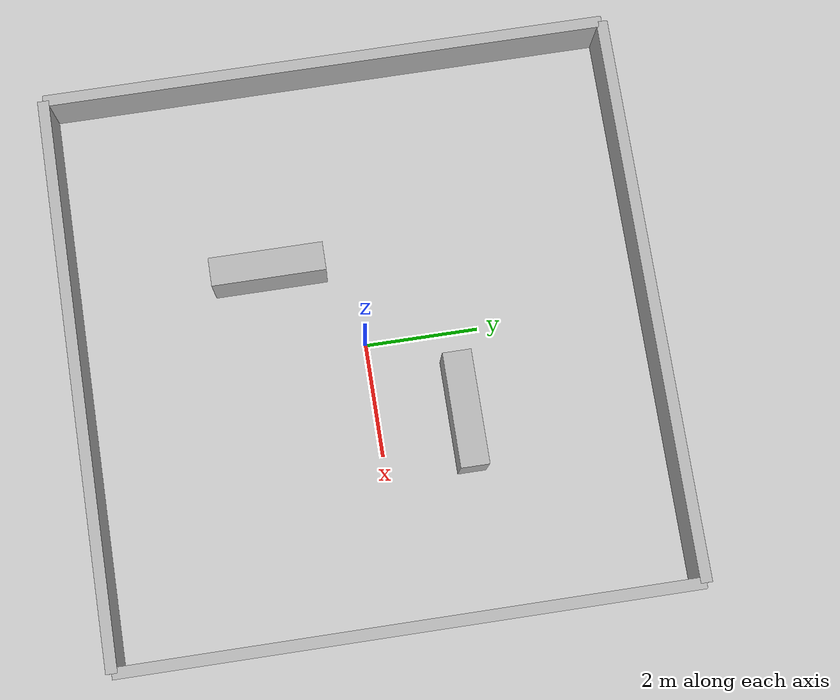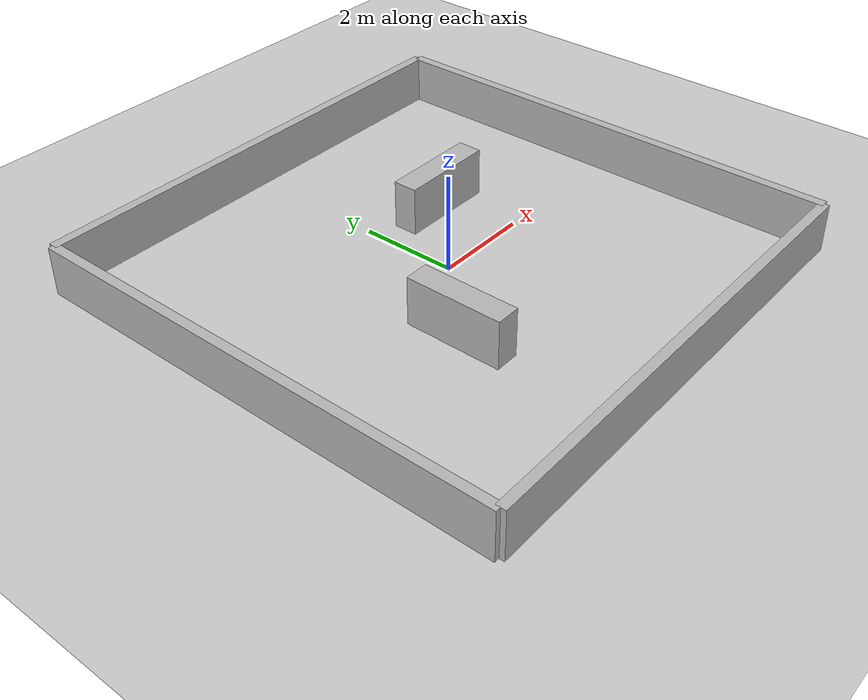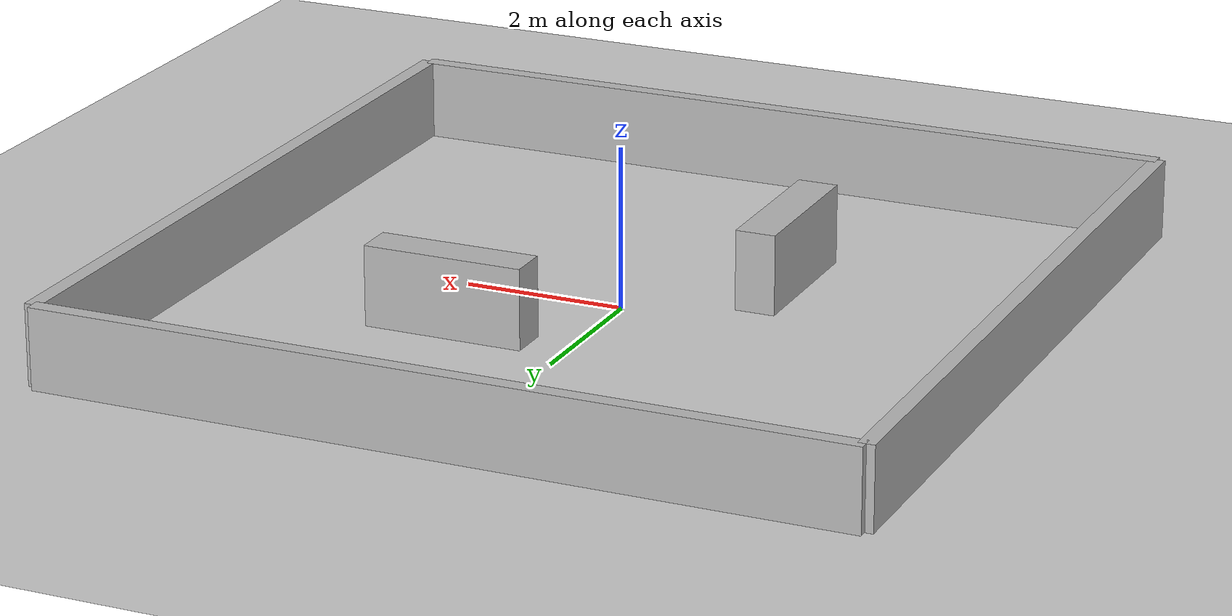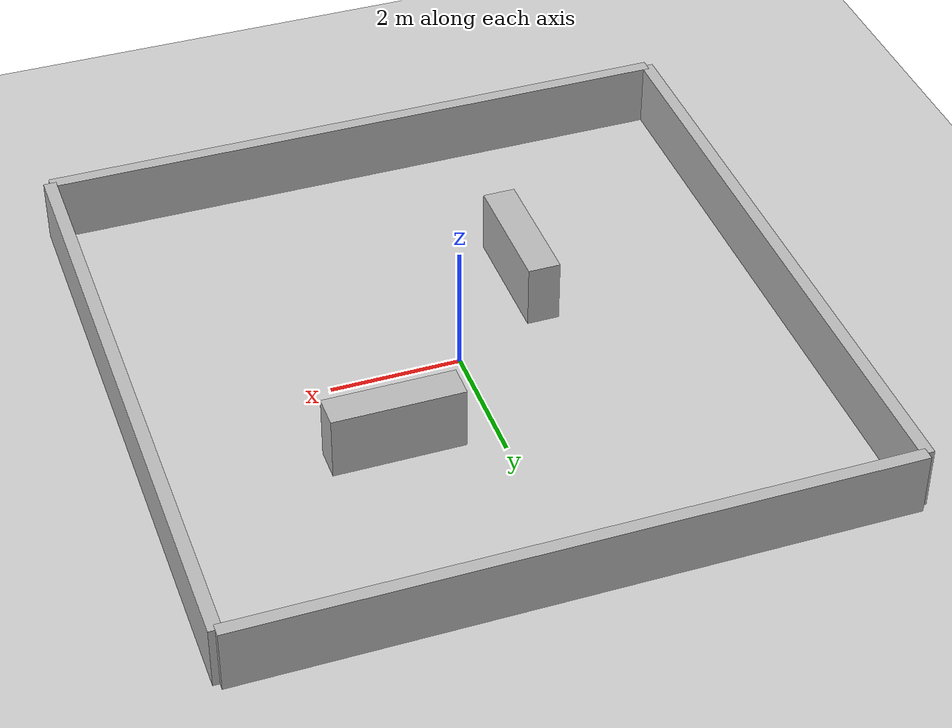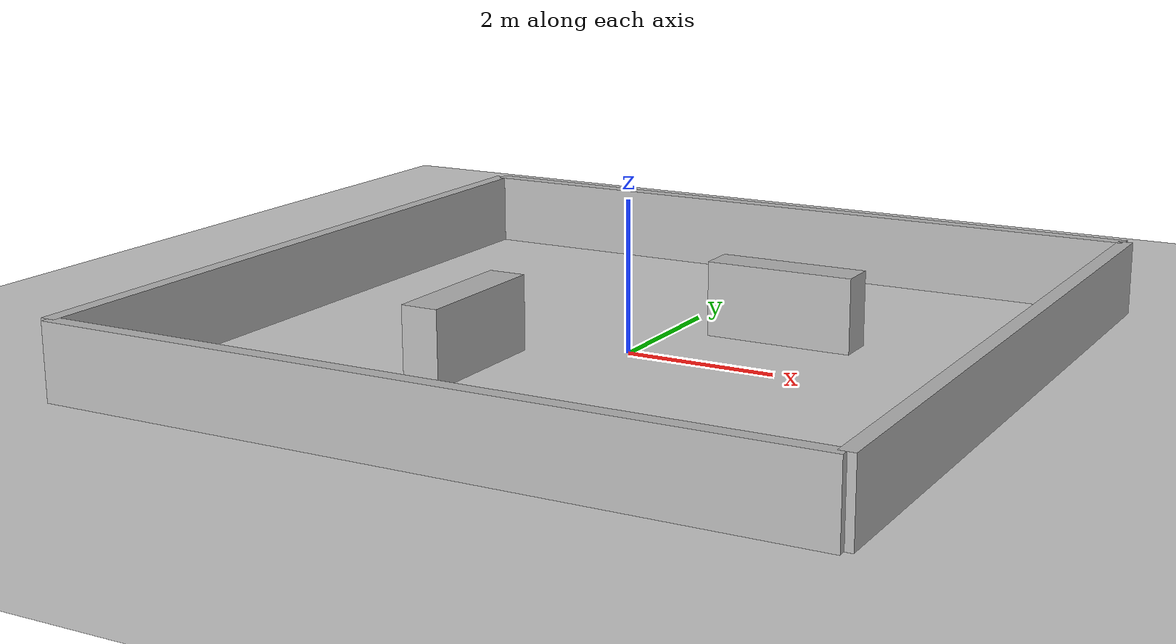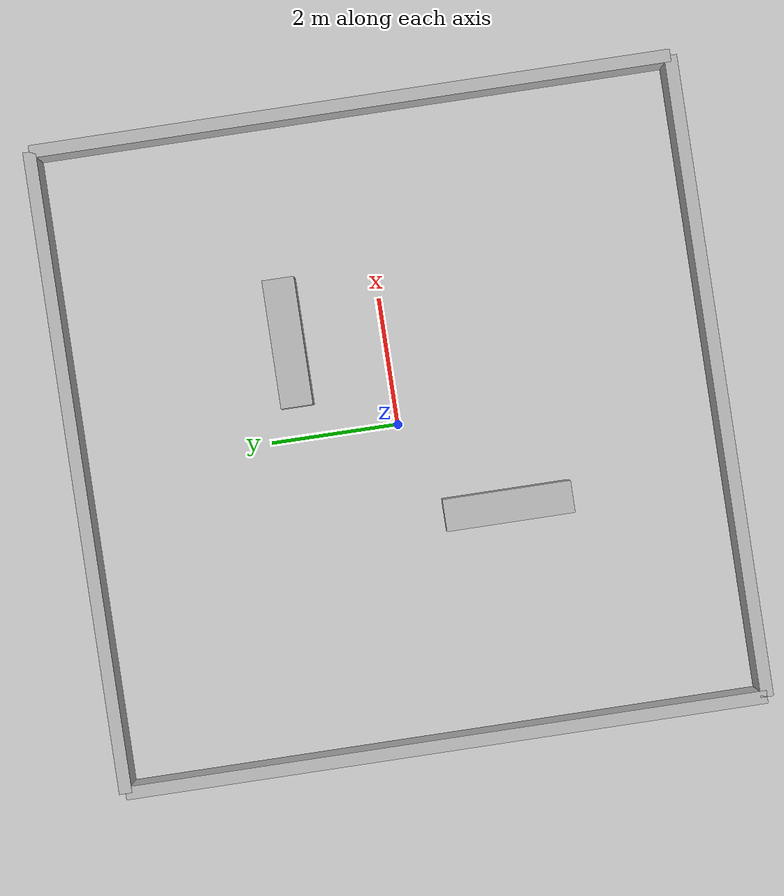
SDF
<?xml version="1.0" ?>
<sdf version="1.9">
  <world name="empty">

    <gravity>0 0 -9.81</gravity>

    <!-- GROUND                                                 -->

    <model name="ground">
      <static>true</static>

      <link name="link">

        <collision name="collision">
          <geometry>
            <plane>
              <normal>0 0 1</normal>
              <size>20 20</size>
            </plane>
          </geometry>
        </collision>

        <visual name="visual">
          <geometry>
            <plane>
              <normal>0 0 1</normal>
              <size>20 20</size>
            </plane>
          </geometry>
        </visual>

      </link>
    </model>

    <!-- NORTH WALL                                             -->

    <model name="wall_north">
      <static>true</static>
      <pose>0 5 0.5 0 0 0</pose>

      <link name="link">

        <collision name="collision">
          <geometry>
            <box>
              <size>10 0.2 1</size>
            </box>
          </geometry>
        </collision>

        <visual name="visual">
          <geometry>
            <box>
              <size>10 0.2 1</size>
            </box>
          </geometry>
        </visual>

      </link>
    </model>

    <!-- SOUTH WALL                                             -->

    <model name="wall_south">
      <static>true</static>
      <pose>0 -5 0.5 0 0 0</pose>

      <link name="link">

        <collision name="collision">
          <geometry>
            <box>
              <size>10 0.2 1</size>
            </box>
          </geometry>
        </collision>

        <visual name="visual">
          <geometry>
            <box>
              <size>10 0.2 1</size>
            </box>
          </geometry>
        </visual>

      </link>
    </model>

    <!-- EAST WALL                                              -->

    <model name="wall_east">
      <static>true</static>
      <pose>5 0 0.5 0 0 0</pose>

      <link name="link">

        <collision name="collision">
          <geometry>
            <box>
              <size>0.2 10 1</size>
            </box>
          </geometry>
        </collision>

        <visual name="visual">
          <geometry>
            <box>
              <size>0.2 10 1</size>
            </box>
          </geometry>
        </visual>

      </link>
    </model>

    <!-- WEST WALL                                              -->

    <model name="wall_west">
      <static>true</static>
      <pose>-5 0 0.5 0 0 0</pose>

      <link name="link">

        <collision name="collision">
          <geometry>
            <box>
              <size>0.2 10 1</size>
            </box>
          </geometry>
        </collision>

        <visual name="visual">
          <geometry>
            <box>
              <size>0.2 10 1</size>
            </box>
          </geometry>
        </visual>

      </link>
    </model>

    <!-- INTERNAL OBSTACLE 1                                    -->

    <model name="obstacle_1">
      <static>true</static>
      <pose>1.5 1.5 0.5 0 0 0</pose>

      <link name="link">

        <collision name="collision">
          <geometry>
            <box>
              <size>2 0.5 1</size>
            </box>
          </geometry>
        </collision>

        <visual name="visual">
          <geometry>
            <box>
              <size>2 0.5 1</size>
            </box>
          </geometry>
        </visual>

      </link>
    </model>

    <!-- INTERNAL OBSTACLE 2                                    -->

    <model name="obstacle_2">
      <static>true</static>
      <pose>-1.5 -1.5 0.5 0 0 0</pose>

      <link name="link">

        <collision name="collision">
          <geometry>
            <box>
              <size>0.5 2 1</size>
            </box>
          </geometry>
        </collision>

        <visual name="visual">
          <geometry>
            <box>
              <size>0.5 2 1</size>
            </box>
          </geometry>
        </visual>

      </link>
    </model>

  </world>
</sdf>
